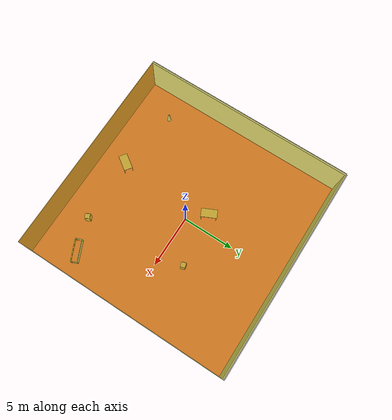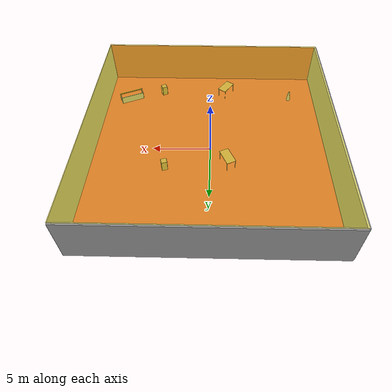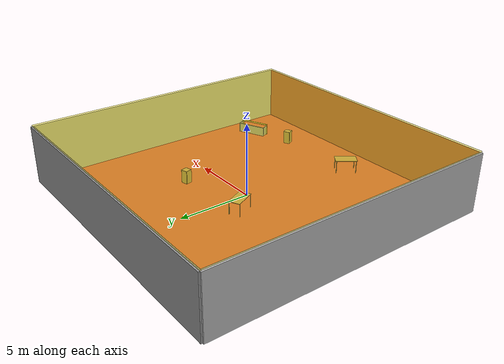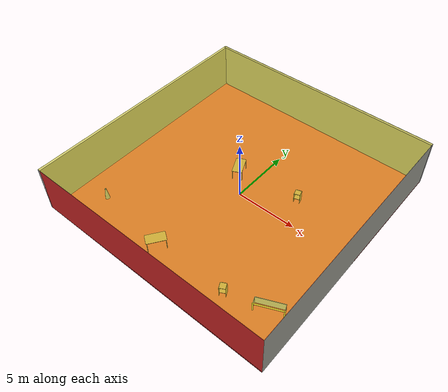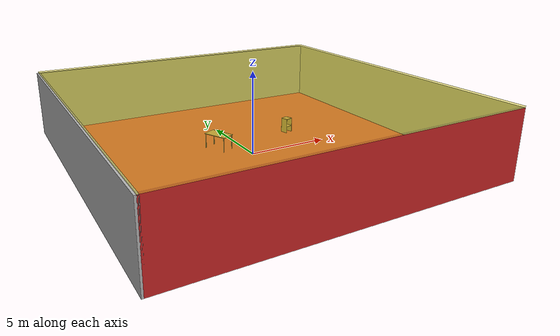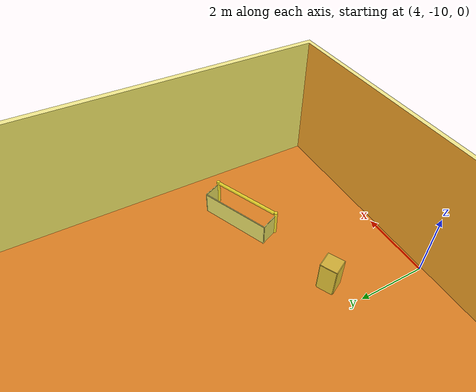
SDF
<sdf version="1.4">
 <world name="default">
  <physics type="ode">
   <max_step_size>0.001</max_step_size>
   <real_time_factor>1</real_time_factor>
   <real_time_update_rate>1000</real_time_update_rate>
   <gravity>0 0 -9.8</gravity>
  </physics>
  <scene><ambient>0.4 0.4 0.4 1</ambient><background>0.7 0.7 0.7 1</background><shadows>1</shadows></scene>
  <model name="Surrounding">
   <static>1</static>
   <link name="Ceiling">
    <collision name="Ceiling_Collision"><geometry><box><size>20 20 0.1</size></box></geometry></collision>
    <visual name="Ceiling_Visual">
     <geometry><box><size>20 20 0.1</size></box></geometry>
     <material>
      <script>
       <uri>file://media/materials/scripts/gazebo.material</uri>
       <name>Gazebo/YellowTransparent</name>
      </script>
     </material>
    </visual>
    <pose>0 0 4.05 0 0 0</pose>
   </link>
   <link name="Wall_South">
    <collision name="Wall_South_Collision">
     <geometry><box><size>20 0 4</size></box></geometry>
     <pose>0 0 2 0 -0 0</pose>
    </collision>
    <visual name="Wall_South_Visual">
     <pose>0 0 2 0 -0 0</pose>
     <geometry><box><size>20 0 4</size></box></geometry>
     <material>
      <script><uri>file://media/materials/scripts/gazebo.material</uri><name>Gazebo/Red</name></script>
     </material>
    </visual>
    <velocity_decay><linear>0</linear><angular>0</angular></velocity_decay>
    <pose>0 -10 0 0 -0 0</pose>
   </link>
   <link name="Wall_East">
    <collision name="Wall_21_Collision">
     <geometry><box><size>20 0 4</size></box></geometry>
     <pose>0 0 2 0 -0 0</pose>
    </collision>
    <visual name="Wall_21_Visual">
     <pose>0 0 2 0 -0 0</pose>
     <geometry><box><size>20 0 4</size></box></geometry>
     <material>
      <script><uri>file://media/materials/scripts/gazebo.material</uri><name>Gazebo/PaintedWall</name></script>
     </material>
    </visual>
    <velocity_decay><linear>0</linear><angular>0</angular></velocity_decay>
    <pose>10 0 0 0 -0 1.5708</pose>
   </link>
   <link name="Wall_North">
    <collision name="Wall_22_Collision">
     <geometry><box><size>20 0.2 4</size></box></geometry>
     <pose>0 0 2 0 -0 0</pose>
    </collision>
    <visual name="Wall_22_Visual">
     <pose>0 0 2 0 -0 0</pose>
     <geometry><box><size>20 0.2 4</size></box></geometry>
     <material>
      <script><uri>file://media/materials/scripts/gazebo.material</uri><name>Gazebo/Grey</name></script>
     </material>
    </visual>
    <velocity_decay><linear>0</linear><angular>0</angular></velocity_decay>
    <pose>0 10 0 0 -0 0</pose>
   </link>
   <link name="Wall_West">
    <collision name="Wall_23_Collision">
     <geometry><box><size>20 0.2 4</size></box></geometry>
     <pose>0 0 2 0 -0 0</pose>
    </collision>
    <visual name="Wall_23_Visual">
     <pose>0 0 2 0 -0 0</pose>
     <geometry><box><size>20 0.2 4</size></box></geometry>
     <material>
      <script><uri>file://media/materials/scripts/gazebo.material</uri><name>Gazebo/JointAnchor</name></script>
     </material>
    </visual>
    <velocity_decay><linear>0</linear><angular>0</angular></velocity_decay>
    <pose>-10 0 0 0 0 -1.5708</pose>
   </link>
   <link name="Ground_link">
    <collision name="collision">
     <pose>0 0 .05 0 -0 0</pose>
     <geometry><box><size>20 20 0.1</size></box></geometry>
    </collision>
    <visual name="visual">
     <pose>0 0 .05 0 -0 0</pose>
     <geometry><box><size>20 20 0.1</size></box></geometry>
     <material>
      <script><uri>file://media/materials/scripts/gazebo.material</uri><name>Gazebo/RedGlow</name></script>
     </material>
    </visual>
   </link>
   <static>1</static>
  </model>
  <spherical_coordinates>
   <surface_model>EARTH_WGS84</surface_model>
   <latitude_deg>0</latitude_deg>
   <longitude_deg>0</longitude_deg>
   <elevation>0</elevation>
   <heading_deg>0</heading_deg>
  </spherical_coordinates>
  <light name="lightball_0" type="diffuse">
   <diffuse>0.8 0.8 0.8 1</diffuse>
   <specular>0.2 0.2 0.2 1</specular>
   <attenuation>
    <range>100</range>
    <constant>0.7</constant>
    <linear>0.01</linear>
    <quadratic>0.001</quadratic>
   </attenuation>
   <direction>-0.5 0.1 -0.9</direction>
   <pose>3.13915271538 2.83684287729 1.60349135192 0 0 0</pose>
  </light>
  <light name="lightball_1" type="diffuse">
   <diffuse>0.8 0.8 0.8 1</diffuse>
   <specular>0.2 0.2 0.2 1</specular>
   <attenuation>
    <range>100</range>
    <constant>0.7</constant>
    <linear>0.01</linear>
    <quadratic>0.001</quadratic>
   </attenuation>
   <direction>-0.5 0.1 -0.9</direction>
   <pose>0.891392782705 3.90236558682 1.25786892884 0 0 0</pose>
  </light>
  <light name="lightball_2" type="diffuse">
   <diffuse>0.8 0.8 0.8 1</diffuse>
   <specular>0.2 0.2 0.2 1</specular>
   <attenuation>
    <range>100</range>
    <constant>0.7</constant>
    <linear>0.01</linear>
    <quadratic>0.001</quadratic>
   </attenuation>
   <direction>-0.5 0.1 -0.9</direction>
   <pose>-5.66047539288 -6.92546926596 3.0790110525 0 0 0</pose>
  </light>
  <light name="lightball_3" type="diffuse">
   <diffuse>0.8 0.8 0.8 1</diffuse>
   <specular>0.2 0.2 0.2 1</specular>
   <attenuation>
    <range>100</range>
    <constant>0.7</constant>
    <linear>0.01</linear>
    <quadratic>0.001</quadratic>
   </attenuation>
   <direction>-0.5 0.1 -0.9</direction>
   <pose>-1.27876341962 1.22595765295 0.595998767321 0 0 0</pose>
  </light>
  <light name="lightball_4" type="diffuse">
   <diffuse>0.8 0.8 0.8 1</diffuse>
   <specular>0.2 0.2 0.2 1</specular>
   <attenuation>
    <range>100</range>
    <constant>0.7</constant>
    <linear>0.01</linear>
    <quadratic>0.001</quadratic>
   </attenuation>
   <direction>-0.5 0.1 -0.9</direction>
   <pose>-9.87947182535 -4.17789329683 1.32033778594 0 0 0</pose>
  </light>
  <light name="lightball_5" type="diffuse">
   <diffuse>0.8 0.8 0.8 1</diffuse>
   <specular>0.2 0.2 0.2 1</specular>
   <attenuation>
    <range>100</range>
    <constant>0.7</constant>
    <linear>0.01</linear>
    <quadratic>0.001</quadratic>
   </attenuation>
   <direction>-0.5 0.1 -0.9</direction>
   <pose>-9.32634095553 -7.05263819976 3.23264134719 0 0 0</pose>
  </light>
  <light name="lightball_6" type="diffuse">
   <diffuse>0.8 0.8 0.8 1</diffuse>
   <specular>0.2 0.2 0.2 1</specular>
   <attenuation>
    <range>100</range>
    <constant>0.7</constant>
    <linear>0.01</linear>
    <quadratic>0.001</quadratic>
   </attenuation>
   <direction>-0.5 0.1 -0.9</direction>
   <pose>-5.51527887163 7.35151918915 3.23063577447 0 0 0</pose>
  </light>
  <light name="lightball_7" type="diffuse">
   <diffuse>0.8 0.8 0.8 1</diffuse>
   <specular>0.2 0.2 0.2 1</specular>
   <attenuation>
    <range>100</range>
    <constant>0.7</constant>
    <linear>0.01</linear>
    <quadratic>0.001</quadratic>
   </attenuation>
   <direction>-0.5 0.1 -0.9</direction>
   <pose>9.11415768274 -7.39395095042 3.26103543852 0 0 0</pose>
  </light>
  <light name="lightball_8" type="diffuse">
   <diffuse>0.8 0.8 0.8 1</diffuse>
   <specular>0.2 0.2 0.2 1</specular>
   <attenuation>
    <range>100</range>
    <constant>0.7</constant>
    <linear>0.01</linear>
    <quadratic>0.001</quadratic>
   </attenuation>
   <direction>-0.5 0.1 -0.9</direction>
   <pose>-6.17719573962 7.66495896689 1.60184384005 0 0 0</pose>
  </light>
  <include>
   <uri>model://construction_cone</uri>
   <pose>-7.50406841559 -6.7369128952 0 0 0 0.663444754291</pose>
  </include>
  <include><uri>model://table</uri><pose>-1.37431566952 -7.51697449676 0 0 0 0.96037898725</pose></include>
  <include><uri>model://table</uri><pose>-1.44150467369 1.61624920587 0 0 0 2.013502618</pose></include>
  <include><uri>model://cabinet</uri><pose>4.75154568795 -7.45302462296 0 0 0 2.0431391039</pose></include>
  <include><uri>model://cabinet</uri><pose>3.77164541153 2.21860362452 0 0 0 1.84178795083</pose></include>
  <include>
   <uri>model://robocup_3Dsim_goal</uri>
   <pose>7.93330617411 -6.74434757809 0 0 0 1.98567231374</pose>
  </include>
 </world>
</sdf>

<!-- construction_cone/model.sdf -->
<sdf version="1.5">
  <model name="Construction Cone">
    <link name="link">
      <collision name="collision">
        <geometry>
          <mesh>
            <scale>10 10 10</scale>
            <uri>file://isr-testbed/construction_cone/meshes/construction_cone.dae</uri>
          </mesh>
        </geometry>
      </collision>
      <visual name="visual">
        <geometry>
          <mesh>
            <scale>10 10 10</scale>
            <uri>file://isr-testbed/construction_cone/meshes/construction_cone.dae</uri>
          </mesh>
        </geometry>
      </visual>
    </link>
  </model>
</sdf>

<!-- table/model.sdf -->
<sdf version="1.5">
  <model name="table">
    <static>true</static>
    <link name="link">
      <collision name="surface">
        <pose>0 0 1.0 0 0 0</pose>
        <geometry>
          <box>
            <size>1.5 0.8 0.03</size>
          </box>
        </geometry>
        <surface>
          <friction>
            <ode>
              <mu>0.6</mu>
              <mu2>0.6</mu2>
            </ode>
          </friction>
        </surface>
      </collision>
      <visual name="visual1">
        <pose>0 0 1.0 0 0 0</pose>
        <geometry>
          <box>
            <size>1.5 0.8 0.03</size>
          </box>
        </geometry>
        <material>
          <script>
            <uri>model://media/materials/scripts/gazebo.material</uri>
            <name>Gazebo/Wood</name>
          </script>
        </material>
      </visual>
      <collision name="front_left_leg">
        <pose>0.68 0.38 0.5 0 0 0</pose>
        <geometry>
          <cylinder>
            <radius>0.02</radius>
            <length>1.0</length>
          </cylinder>
        </geometry>
      </collision>
      <visual name="front_left_leg">
        <pose>0.68 0.38 0.5 0 0 0</pose>
        <geometry>
          <cylinder>
            <radius>0.02</radius>
            <length>1.0</length>
          </cylinder>
        </geometry>
        <material>
          <script>
            <uri>model://media/materials/scripts/gazebo.material</uri>
            <name>Gazebo/Grey</name>
          </script>
        </material>
      </visual>
      <collision name="front_right_leg">
        <pose>0.68 -0.38 0.5 0 0 0</pose>
        <geometry>
          <cylinder>
            <radius>0.02</radius>
            <length>1.0</length>
          </cylinder>
        </geometry>
      </collision>
      <visual name="front_right_leg">
        <pose>0.68 -0.38 0.5 0 0 0</pose>
        <geometry>
          <cylinder>
            <radius>0.02</radius>
            <length>1.0</length>
          </cylinder>
        </geometry>
        <material>
          <script>
            <uri>model://media/materials/scripts/gazebo.material</uri>
            <name>Gazebo/Grey</name>
          </script>
        </material>
      </visual>
      <collision name="back_right_leg">
        <pose>-0.68 -0.38 0.5 0 0 0</pose>
        <geometry>
          <cylinder>
            <radius>0.02</radius>
            <length>1.0</length>
          </cylinder>
        </geometry>
      </collision>
      <visual name="back_right_leg">
        <pose>-0.68 -0.38 0.5 0 0 0</pose>
        <geometry>
          <cylinder>
            <radius>0.02</radius>
            <length>1.0</length>
          </cylinder>
        </geometry>
        <material>
          <script>
            <uri>model://media/materials/scripts/gazebo.material</uri>
            <name>Gazebo/Grey</name>
          </script>
        </material>
      </visual>
      <collision name="back_left_leg">
        <pose>-0.68 0.38 0.5 0 0 0</pose>
        <geometry>
          <cylinder>
            <radius>0.02</radius>
            <length>1.0</length>
          </cylinder>
        </geometry>
      </collision>
      <visual name="back_left_leg">
        <pose>-0.68 0.38 0.5 0 0 0</pose>
        <geometry>
          <cylinder>
            <radius>0.02</radius>
            <length>1.0</length>
          </cylinder>
        </geometry>
        <material>
          <script>
            <uri>model://media/materials/scripts/gazebo.material</uri>
            <name>Gazebo/Grey</name>
          </script>
        </material>
      </visual>
    </link>
  </model>
</sdf>

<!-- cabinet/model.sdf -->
<sdf version="1.5">
  <model name="cabinet">
    <static>true</static>
    <link name="cabinet_bottom_plate">
      <inertial>
        <pose>0 0 -1 0 0 0</pose>
        <inertia>
          <ixx>2.050000</ixx>
          <ixy>0</ixy>
          <ixz>0</ixz>
          <iyy>2.050000</iyy>
          <iyz>0</iyz>
          <izz>2.050000</izz>
        </inertia>
        <mass>25.000000</mass>
      </inertial>
      <collision name="cabinet_bottom_plate_geom">
        <pose>0 0 0.010000 0 0 0</pose>
        <geometry>
          <box>
            <size>0.450000 0.450000 0.020000</size>
          </box>
        </geometry>
      </collision>
      <visual name="cabinet_bottom_plate_geom_visual">
        <pose>0 0 0.010000 0 0 0</pose>
        <geometry>
          <box>
            <size>0.450000 0.450000 0.020000</size>
          </box>
        </geometry>
        <material>
          <script>
            <uri>model://media/materials/scripts/gazebo.material</uri>
            <name>Gazebo/Wood</name>
          </script>
        </material>
      </visual>
      <collision name="cabinet_bottom_plate_geom_cabinet_back_plate">
        <pose>0.235000 0 0.510000 0 0 0</pose>
        <geometry>
          <box>
            <size>0.020000 0.450000 1.020000</size>
          </box>
        </geometry>
      </collision>
      <visual name="cabinet_bottom_plate_geom_cabinet_back_plate_visual">
        <pose>0.235000 0 0.510000 0 0 0</pose>
        <geometry>
          <box>
            <size>0.020000 0.450000 1.020000</size>
          </box>
        </geometry>
        <material>
          <script>
            <uri>model://media/materials/scripts/gazebo.material</uri>
            <name>Gazebo/Wood</name>
          </script>
        </material>
      </visual>
      <collision name="cabinet_bottom_plate_geom_cabinet_left_plate">
        <pose>0 0.235000 0.510000 0 0 0</pose>
        <geometry>
          <box>
            <size>0.450000 0.020000 1.020000</size>
          </box>
        </geometry>
      </collision>
      <visual name="cabinet_bottom_plate_geom_cabinet_left_plate_visual">
        <pose>0 0.235000 0.510000 0 0 0</pose>
        <geometry>
          <box>
            <size>0.450000 0.020000 1.020000</size>
          </box>
        </geometry>
        <material>
          <script>
            <uri>model://media/materials/scripts/gazebo.material</uri>
            <name>Gazebo/Wood</name>
          </script>
        </material>
      </visual>
      <collision name="cabinet_bottom_plate_geom_cabinet_middle_plate">
        <pose>0 0 0.510000 0 0 0</pose>
        <geometry>
          <box>
            <size>0.450000 0.450000 0.020000</size>
          </box>
        </geometry>
      </collision>
      <visual name="cabinet_bottom_plate_geom_cabinet_middle_plate_visual">
        <pose>0 0 0.510000 0 0 0</pose>
        <geometry>
          <box>
            <size>0.450000 0.450000 0.020000</size>
          </box>
        </geometry>
        <material>
          <script>
            <uri>model://media/materials/scripts/gazebo.material</uri>
            <name>Gazebo/Wood</name>
          </script>
        </material>
      </visual>
      <collision name="cabinet_bottom_plate_geom_cabinet_right_plate">
        <pose>0 -0.235000 0.510000 0 0 0</pose>
        <geometry>
          <box>
            <size>0.450000 0.020000 1.020000</size>
          </box>
        </geometry>
      </collision>
      <visual name="cabinet_bottom_plate_geom_cabinet_right_plate_visual">
        <pose>0 -0.235000 0.510000 0 0 0</pose>
        <geometry>
          <box>
            <size>0.450000 0.020000 1.020000</size>
          </box>
        </geometry>
        <material>
          <script>
            <uri>model://media/materials/scripts/gazebo.material</uri>
            <name>Gazebo/Wood</name>
          </script>
        </material>
      </visual>
      <collision name="cabinet_bottom_plate_geom_cabinet_top_plate">
        <pose>0 0 1.010000 0 0 0</pose>
        <geometry>
          <box>
            <size>0.450000 0.450000 0.020000</size>
          </box>
        </geometry>
      </collision>
      <visual name="cabinet_bottom_plate_geom_cabinet_top_plate_visual">
        <pose>0 0 1.010000 0 0 0</pose>
        <geometry>
          <box>
            <size>0.450000 0.450000 0.020000</size>
          </box>
        </geometry>
        <material>
          <script>
            <uri>model://media/materials/scripts/gazebo.material</uri>
            <name>Gazebo/Wood</name>
          </script>
        </material>
      </visual>
    </link>
  </model>
</sdf>

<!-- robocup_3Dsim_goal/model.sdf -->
<sdf version="1.5">
  <model name="robocup_3d_goal">
    <static>true</static>
    <link name="left_post">
      <pose>0 1.05 0.45 0 0 0</pose>
      <collision name="collision">
        <geometry>
          <cylinder>
            <radius>0.05</radius>
            <length>0.9</length>
          </cylinder>
        </geometry>
      </collision>
      <visual name="visual">
        <geometry>
          <cylinder>
            <radius>0.05</radius>
            <length>0.9</length>
          </cylinder>
        </geometry>
        <material>
          <script>
            <uri>file://media/materials/scripts/gazebo.material</uri>
            <name>Gazebo/ZincYellow</name>
          </script>
        </material>
      </visual>
    </link>
    <link name="left_support_horiz_lower">
      <pose>0.30 1.05 0.01 0 0 0</pose>
      <collision name="collision">
        <geometry>
          <box>
            <size>0.50 0.02 0.02</size>
          </box>
        </geometry>
      </collision>
      <visual name="visual">
        <geometry>
          <box>
            <size>0.50 0.02 0.02</size>
          </box>
        </geometry>
        <material>
          <script>
            <uri>file://media/materials/scripts/gazebo.material</uri>
            <name>Gazebo/White</name>
          </script>
        </material>
      </visual>
    </link>
    <link name="left_support_horiz_upper">
      <pose>0.30 1.05 0.79 0 0 0</pose>
      <collision name="collision">
        <geometry>
          <box>
            <size>0.50 0.02 0.02</size>
          </box>
        </geometry>
      </collision>
      <visual name="visual">
        <geometry>
          <box>
            <size>0.50 0.02 0.02</size>
          </box>
        </geometry>
        <material>
          <script>
            <uri>file://media/materials/scripts/gazebo.material</uri>
            <name>Gazebo/White</name>
          </script>
        </material>
      </visual>
    </link>
    <link name="left_support_vertical">
      <pose>0.56 1.05 0.4 0 1.5708 0</pose>
      <collision name="collision">
        <geometry>
          <box>
            <size>0.80 0.02 0.02</size>
          </box>
        </geometry>
      </collision>
      <visual name="visual">
        <geometry>
          <box>
            <size>0.80 0.02 0.02</size>
          </box>
        </geometry>
        <material>
          <script>
            <uri>file://media/materials/scripts/gazebo.material</uri>
            <name>Gazebo/White</name>
          </script>
        </material>
      </visual>
    </link>
    <link name="right_support_horiz_lower">
      <pose>0.30 -1.05 0.01 0 0 0</pose>
      <collision name="collision">
        <geometry>
          <box>
            <size>0.50 0.02 0.02</size>
          </box>
        </geometry>
      </collision>
      <visual name="visual">
        <geometry>
          <box>
            <size>0.50 0.02 0.02</size>
          </box>
        </geometry>
        <material>
          <script>
            <uri>file://media/materials/scripts/gazebo.material</uri>
            <name>Gazebo/White</name>
          </script>
        </material>
      </visual>
    </link>
    <link name="right_support_horiz_upper">
      <pose>0.30 -1.05 0.79 0 0 0</pose>
      <collision name="collision">
        <geometry>
          <box>
            <size>0.50 0.02 0.02</size>
          </box>
        </geometry>
      </collision>
      <visual name="visual">
        <geometry>
          <box>
            <size>0.50 0.02 0.02</size>
          </box>
        </geometry>
        <material>
          <script>
            <uri>file://media/materials/scripts/gazebo.material</uri>
            <name>Gazebo/White</name>
          </script>
        </material>
      </visual>
    </link>
    <link name="right_support_vertical">
      <pose>0.56 -1.05 0.4 0 1.5708 0</pose>
      <collision name="collision">
        <geometry>
          <box>
            <size>0.80 0.02 0.02</size>
          </box>
        </geometry>
      </collision>
      <visual name="visual">
        <geometry>
          <box>
            <size>0.80 0.02 0.02</size>
          </box>
        </geometry>
        <material>
          <script>
            <uri>file://media/materials/scripts/gazebo.material</uri>
            <name>Gazebo/White</name>
          </script>
        </material>
      </visual>
    </link>
    <link name="center_support_horiz_lower">
      <pose>0.56 0 0.01 0 1.5708 0</pose>
      <collision name="collision">
        <geometry>
          <box>
            <size>0.02 2.08 0.02</size>
          </box>
        </geometry>
      </collision>
      <visual name="visual">
        <geometry>
          <box>
            <size>0.02 2.08 0.02</size>
          </box>
        </geometry>
        <material>
          <script>
            <uri>file://media/materials/scripts/gazebo.material</uri>
            <name>Gazebo/White</name>
          </script>
        </material>
      </visual>
    </link>
    <link name="center_support_horiz_upper">
      <pose>0.56 0 0.79 0 1.5708 0</pose>
      <collision name="collision">
        <geometry>
          <box>
            <size>0.02 2.08 0.02</size>
          </box>
        </geometry>
      </collision>
      <visual name="visual">
        <geometry>
          <box>
            <size>0.02 2.08 0.02</size>
          </box>
        </geometry>
        <material>
          <script>
            <uri>file://media/materials/scripts/gazebo.material</uri>
            <name>Gazebo/White</name>
          </script>
        </material>
      </visual>
    </link>
    <link name="right_post">
      <pose>0 -1.05 0.45 0 0 0</pose>
      <collision name="collision">
        <geometry>
          <cylinder>
            <radius>0.05</radius>
            <length>0.9</length>
          </cylinder>
        </geometry>
      </collision>
      <visual name="visual">
        <geometry>
          <cylinder>
            <radius>0.05</radius>
            <length>0.9</length>
          </cylinder>
        </geometry>
        <material>
          <script>
            <uri>file://media/materials/scripts/gazebo.material</uri>
            <name>Gazebo/ZincYellow</name>
          </script>
        </material>
      </visual>
    </link>
    <link name="crossbar">
      <pose>0 0 0.85 1.57 1.57 0</pose>
      <collision name="collision">
        <geometry>
          <cylinder>
            <radius>0.05</radius>
            <length>2.0</length>
          </cylinder>
        </geometry>
      </collision>
      <visual name="visual">
        <geometry>
          <cylinder>
            <radius>0.05</radius>
            <length>2.0</length>
          </cylinder>
        </geometry>
        <material>
          <script>
            <uri>file://media/materials/scripts/gazebo.material</uri>
            <name>Gazebo/ZincYellow</name>
          </script>
        </material>
      </visual>
    </link>
    <link name="center_net">
      <pose>0.56 0 0.40 0 0 0</pose>
      <collision name="collision">
        <geometry>
          <box>
            <size>0.01 2.1 0.80</size>
          </box>
        </geometry>
      </collision>
      <visual name="visual">
        <geometry>
          <box>
            <size>0.01 2.1 0.80</size>
          </box>
        </geometry>
        <material>
          <script>
            <uri>model://../model_source/models/robocup09_spl_field/materials/scripts/</uri>
            <uri>model://../model_source/models/robocup09_spl_field/materials/textures/</uri>
            <name>RoboCup/Net</name>
          </script>
        </material>
      </visual>
    </link>
    <link name="left_net">
      <pose>0.30 1.05 0.40 0 0 0</pose>
      <collision name="collision">
        <geometry>
          <box>
            <size>0.50 0.01 0.76</size>
          </box>
        </geometry>
      </collision>
      <visual name="visual">
        <geometry>
          <box>
            <size>0.50 0.01 0.76</size>
          </box>
        </geometry>
        <material>
          <script>
            <uri>model://../model_source/models/robocup09_spl_field/materials/scripts/</uri>
            <uri>model://../model_source/models/robocup09_spl_field/materials/textures/</uri>
            <name>RoboCup/Net</name>
          </script>
        </material>
      </visual>
    </link>
    <link name="right_net">
      <pose>0.30 -1.05 0.40 0 0 0</pose>
      <collision name="collision">
        <geometry>
          <box>
            <size>0.50 0.01 0.76</size>
          </box>
        </geometry>
      </collision>
      <visual name="visual">
        <geometry>
          <box>
            <size>0.50 0.01 0.76</size>
          </box>
        </geometry>
        <material>
          <script>
            <uri>model://../model_source/models/robocup09_spl_field/materials/scripts/</uri>
            <uri>model://../model_source/models/robocup09_spl_field/materials/textures/</uri>
            <name>RoboCup/Net</name>
          </script>
        </material>
      </visual>
    </link>
  </model>
</sdf>
